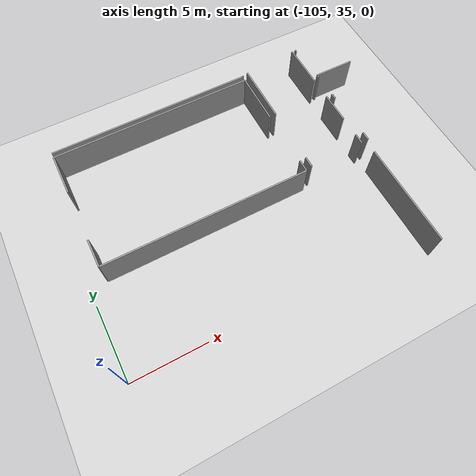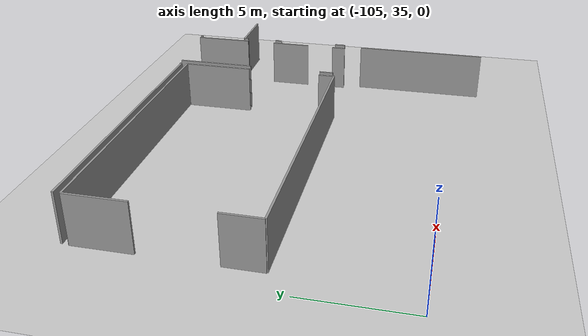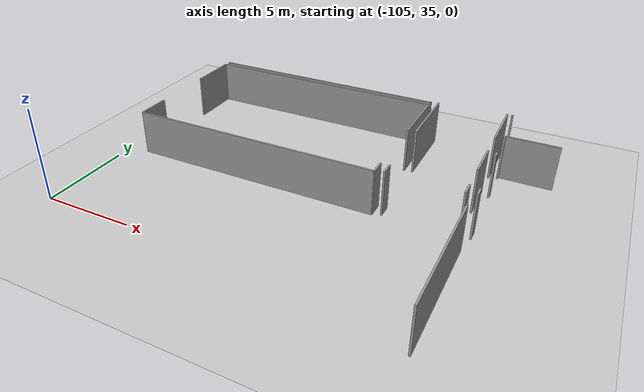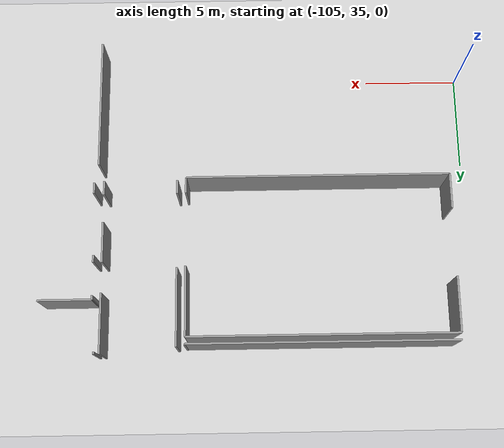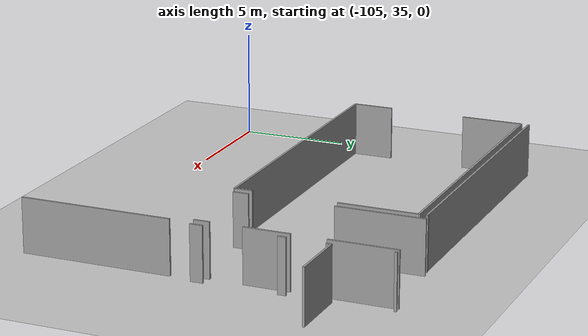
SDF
<sdf version="1.6">
 <world name="default">
  <model name="ground_plane">
   <static>1</static>
   <link name="link">
    <collision name="collision">
     <geometry><plane><normal>0 0 1</normal><size>100 100</size></plane></geometry>
     <surface><friction><ode><mu>100</mu><mu2>50</mu2></ode></friction></surface>
    </collision>
    <visual name="visual">
     <cast_shadows>0</cast_shadows>
     <geometry><plane><normal>0 0 1</normal><size>100 100</size></plane></geometry>
     <material>
      <script><uri>file://media/materials/scripts/gazebo.material</uri><name>Gazebo/Grey</name></script>
     </material>
    </visual>
   </link>
  </model>
  <model name="0510035520_A_40_1_103">
   <static>1</static>
   <link name="Wall_8">
    <collision name="Wall_8_Collision">
     <geometry><box><size>0.0763954543436 0.1 2.5</size></box></geometry>
     <pose>0.0381977271718 0 1.25 0 0 0</pose>
    </collision>
    <visual name="Wall_8_Visual">
     <pose>0.0381977271718 0 1.25 0 0 0</pose>
     <geometry><box><size>0.0763954543436 0.1 2.5</size></box></geometry>
     <material>
      <script><uri>file://media/materials/scripts/gazebo.material</uri><name>Gazebo/Grey</name></script>
      <ambient>1 1 1 1</ambient>
     </material>
    </visual>
    <pose>22.2704170659 -18.6798307117 0 0 0 -1.57079632679</pose>
   </link>
   <link name="Wall_9">
    <collision name="Wall_9_Collision">
     <geometry><box><size>13.904734107 0.1 2.5</size></box></geometry>
     <pose>6.95236705351 0 1.25 0 0 0</pose>
    </collision>
    <visual name="Wall_9_Visual">
     <pose>6.95236705351 0 1.25 0 0 0</pose>
     <geometry><box><size>13.904734107 0.1 2.5</size></box></geometry>
     <material>
      <script><uri>file://media/materials/scripts/gazebo.material</uri><name>Gazebo/Grey</name></script>
      <ambient>1 1 1 1</ambient>
     </material>
    </visual>
    <pose>22.2704170659 -18.7562261661 0 0 0 3.14159265359</pose>
   </link>
   <link name="Wall_11">
    <collision name="Wall_11_Collision">
     <geometry><box><size>1.87283075615 0.1 2.5</size></box></geometry>
     <pose>0.936415378075 0 1.25 0 0 0</pose>
    </collision>
    <visual name="Wall_11_Visual">
     <pose>0.936415378075 0 1.25 0 0 0</pose>
     <geometry><box><size>1.87283075615 0.1 2.5</size></box></geometry>
     <material>
      <script><uri>file://media/materials/scripts/gazebo.material</uri><name>Gazebo/Grey</name></script>
      <ambient>1 1 1 1</ambient>
     </material>
    </visual>
    <pose>8.36898243031 -27.4554095469 0 0 0 1.57079632679</pose>
   </link>
   <link name="Wall_12">
    <collision name="Wall_12_Collision">
     <geometry><box><size>2.87079396704 0.1 2.5</size></box></geometry>
     <pose>1.43539698352 0 1.25 0 0 0</pose>
    </collision>
    <visual name="Wall_12_Visual">
     <pose>1.43539698352 0 1.25 0 0 0</pose>
     <geometry><box><size>2.87079396704 0.1 2.5</size></box></geometry>
     <material>
      <script><uri>file://media/materials/scripts/gazebo.material</uri><name>Gazebo/Grey</name></script>
      <ambient>1 1 1 1</ambient>
     </material>
    </visual>
    <pose>8.36898243031 -21.9815864113 0 0 0 1.57079632679</pose>
   </link>
   <link name="Wall_13">
    <collision name="Wall_13_Collision">
     <geometry><box><size>13.8846834728 0.1 2.5</size></box></geometry>
     <pose>6.94234173641 0 1.25 0 0 0</pose>
    </collision>
    <visual name="Wall_13_Visual">
     <pose>6.94234173641 0 1.25 0 0 0</pose>
     <geometry><box><size>13.8846834728 0.1 2.5</size></box></geometry>
     <material>
      <script><uri>file://media/materials/scripts/gazebo.material</uri><name>Gazebo/Grey</name></script>
      <ambient>1 1 1 1</ambient>
     </material>
    </visual>
    <pose>8.36898243031 -19.1107924442 0 0 0 0.0</pose>
   </link>
   <link name="Wall_14">
    <collision name="Wall_14_Collision">
     <geometry><box><size>3.60936796086 0.1 2.5</size></box></geometry>
     <pose>1.80468398043 0 1.25 0 0 0</pose>
    </collision>
    <visual name="Wall_14_Visual">
     <pose>1.80468398043 0 1.25 0 0 0</pose>
     <geometry><box><size>3.60936796086 0.1 2.5</size></box></geometry>
     <material>
      <script><uri>file://media/materials/scripts/gazebo.material</uri><name>Gazebo/Grey</name></script>
      <ambient>1 1 1 1</ambient>
     </material>
    </visual>
    <pose>22.2536659031 -19.1107924442 0 0 0 -1.57079632679</pose>
   </link>
   <link name="Wall_15">
    <collision name="Wall_15_Collision">
     <geometry><box><size>0.831466805414 0.1 2.5</size></box></geometry>
     <pose>0.415733402707 0 1.25 0 0 0</pose>
    </collision>
    <visual name="Wall_15_Visual">
     <pose>0.415733402707 0 1.25 0 0 0</pose>
     <geometry><box><size>0.831466805414 0.1 2.5</size></box></geometry>
     <material>
      <script><uri>file://media/materials/scripts/gazebo.material</uri><name>Gazebo/Grey</name></script>
      <ambient>1 1 1 1</ambient>
     </material>
    </visual>
    <pose>22.2536659031 -26.6186128261 0 0 0 -1.57079632679</pose>
   </link>
   <link name="Wall_16">
    <collision name="Wall_16_Collision">
     <geometry><box><size>13.8846844958 0.1 2.5</size></box></geometry>
     <pose>6.94234224791 0 1.25 0 0 0</pose>
    </collision>
    <visual name="Wall_16_Visual">
     <pose>6.94234224791 0 1.25 0 0 0</pose>
     <geometry><box><size>13.8846844958 0.1 2.5</size></box></geometry>
     <material>
      <script><uri>file://media/materials/scripts/gazebo.material</uri><name>Gazebo/Grey</name></script>
      <ambient>1 1 1 1</ambient>
     </material>
    </visual>
    <pose>22.2536659031 -27.4500796315 0 0 0 -3.14120878347</pose>
   </link>
   <link name="Wall_95">
    <collision name="Wall_95_Collision">
     <geometry><box><size>0.123857082125 0.1 2.5</size></box></geometry>
     <pose>0.0619285410626 0 1.25 0 0 0</pose>
    </collision>
    <visual name="Wall_95_Visual">
     <pose>0.0619285410626 0 1.25 0 0 0</pose>
     <geometry><box><size>0.123857082125 0.1 2.5</size></box></geometry>
     <material>
      <script><uri>file://media/materials/scripts/gazebo.material</uri><name>Gazebo/Grey</name></script>
      <ambient>1 1 1 1</ambient>
     </material>
    </visual>
    <pose>26.8244490834 -18.431862742 0 0 0 1.57079632679</pose>
   </link>
   <link name="Wall_97">
    <collision name="Wall_97_Collision">
     <geometry><box><size>2.79186045774 0.1 2.5</size></box></geometry>
     <pose>1.39593022887 0 1.25 0 0 0</pose>
    </collision>
    <visual name="Wall_97_Visual">
     <pose>1.39593022887 0 1.25 0 0 0</pose>
     <geometry><box><size>2.79186045774 0.1 2.5</size></box></geometry>
     <material>
      <script><uri>file://media/materials/scripts/gazebo.material</uri><name>Gazebo/Grey</name></script>
      <ambient>1 1 1 1</ambient>
     </material>
    </visual>
    <pose>26.983838935 -21.0544349338 0 0 0 0.0</pose>
   </link>
   <link name="Wall_100">
    <collision name="Wall_100_Collision">
     <geometry><box><size>0.373347884848 0.1 2.5</size></box></geometry>
     <pose>0.186673942424 0 1.25 0 0 0</pose>
    </collision>
    <visual name="Wall_100_Visual">
     <pose>0.186673942424 0 1.25 0 0 0</pose>
     <geometry><box><size>0.373347884848 0.1 2.5</size></box></geometry>
     <material>
      <script><uri>file://media/materials/scripts/gazebo.material</uri><name>Gazebo/Grey</name></script>
      <ambient>1 1 1 1</ambient>
     </material>
    </visual>
    <pose>26.9904378779 -23.3630497268 0 0 0 1.57079632679</pose>
   </link>
   <link name="Wall_101">
    <collision name="Wall_101_Collision">
     <geometry><box><size>0.222431522595 0.1 2.5</size></box></geometry>
     <pose>0.111215761297 0 1.25 0 0 0</pose>
    </collision>
    <visual name="Wall_101_Visual">
     <pose>0.111215761297 0 1.25 0 0 0</pose>
     <geometry><box><size>0.222431522595 0.1 2.5</size></box></geometry>
     <material>
      <script><uri>file://media/materials/scripts/gazebo.material</uri><name>Gazebo/Grey</name></script>
      <ambient>1 1 1 1</ambient>
     </material>
    </visual>
    <pose>26.9904378779 -21.2767685484 0 0 0 1.60046798131</pose>
   </link>
   <link name="Wall_105">
    <collision name="Wall_105_Collision">
     <geometry><box><size>0.577153698263 0.1 2.5</size></box></geometry>
     <pose>0.288576849132 0 1.25 0 0 0</pose>
    </collision>
    <visual name="Wall_105_Visual">
     <pose>0.288576849132 0 1.25 0 0 0</pose>
     <geometry><box><size>0.577153698263 0.1 2.5</size></box></geometry>
     <material>
      <script><uri>file://media/materials/scripts/gazebo.material</uri><name>Gazebo/Grey</name></script>
      <ambient>1 1 1 1</ambient>
     </material>
    </visual>
    <pose>27.0622648333 -27.2318069048 0 0 0 1.57079632679</pose>
   </link>
   <link name="Wall_117">
    <collision name="Wall_117_Collision">
     <geometry><box><size>3.08627483328 0.1 2.5</size></box></geometry>
     <pose>1.54313741664 0 1.25 0 0 0</pose>
    </collision>
    <visual name="Wall_117_Visual">
     <pose>1.54313741664 0 1.25 0 0 0</pose>
     <geometry><box><size>3.08627483328 0.1 2.5</size></box></geometry>
     <material>
      <script><uri>file://media/materials/scripts/gazebo.material</uri><name>Gazebo/Grey</name></script>
      <ambient>1 1 1 1</ambient>
     </material>
    </visual>
    <pose>26.5422173717 -18.3191731017 0 0 0 -1.57079632679</pose>
   </link>
   <link name="Wall_118">
    <collision name="Wall_118_Collision">
     <geometry><box><size>2.11775305994 0.1 2.5</size></box></geometry>
     <pose>1.05887652997 0 1.25 0 0 0</pose>
    </collision>
    <visual name="Wall_118_Visual">
     <pose>1.05887652997 0 1.25 0 0 0</pose>
     <geometry><box><size>2.11775305994 0.1 2.5</size></box></geometry>
     <material>
      <script><uri>file://media/materials/scripts/gazebo.material</uri><name>Gazebo/Grey</name></script>
      <ambient>1 1 1 1</ambient>
     </material>
    </visual>
    <pose>26.5422173717 -22.9851333431 0 0 0 -1.57079632679</pose>
   </link>
   <link name="Wall_119">
    <collision name="Wall_119_Collision">
     <geometry><box><size>0.733751689393 0.1 2.5</size></box></geometry>
     <pose>0.366875844696 0 1.25 0 0 0</pose>
    </collision>
    <visual name="Wall_119_Visual">
     <pose>0.366875844696 0 1.25 0 0 0</pose>
     <geometry><box><size>0.733751689393 0.1 2.5</size></box></geometry>
     <material>
      <script><uri>file://media/materials/scripts/gazebo.material</uri><name>Gazebo/Grey</name></script>
      <ambient>1 1 1 1</ambient>
     </material>
    </visual>
    <pose>26.5422173717 -26.5780039467 0 0 0 -1.57079632679</pose>
   </link>
   <link name="Wall_120">
    <collision name="Wall_120_Collision">
     <geometry><box><size>0.72537610802 0.1 2.5</size></box></geometry>
     <pose>0.36268805401 0 1.25 0 0 0</pose>
    </collision>
    <visual name="Wall_120_Visual">
     <pose>0.36268805401 0 1.25 0 0 0</pose>
     <geometry><box><size>0.72537610802 0.1 2.5</size></box></geometry>
     <material>
      <script><uri>file://media/materials/scripts/gazebo.material</uri><name>Gazebo/Grey</name></script>
      <ambient>1 1 1 1</ambient>
     </material>
    </visual>
    <pose>22.7046782698 -27.3117556361 0 0 0 1.57079632679</pose>
   </link>
   <link name="Wall_121">
    <collision name="Wall_121_Collision">
     <geometry><box><size>4.0563194396 0.1 2.5</size></box></geometry>
     <pose>2.0281597198 0 1.25 0 0 0</pose>
    </collision>
    <visual name="Wall_121_Visual">
     <pose>2.0281597198 0 1.25 0 0 0</pose>
     <geometry><box><size>4.0563194396 0.1 2.5</size></box></geometry>
     <material>
      <script><uri>file://media/materials/scripts/gazebo.material</uri><name>Gazebo/Grey</name></script>
      <ambient>1 1 1 1</ambient>
     </material>
    </visual>
    <pose>22.7046782698 -22.6666074454 0 0 0 1.57079632679</pose>
   </link>
   <link name="Wall_243">
    <collision name="Wall_243_Collision">
     <geometry><box><size>6.93244332206 0.1 2.5</size></box></geometry>
     <pose>3.46622166103 0 1.25 0 0 0</pose>
    </collision>
    <visual name="Wall_243_Visual">
     <pose>3.46622166103 0 1.25 0 0 0</pose>
     <geometry><box><size>6.93244332206 0.1 2.5</size></box></geometry>
     <material>
      <script><uri>file://media/materials/scripts/gazebo.material</uri><name>Gazebo/Grey</name></script>
      <ambient>1 1 1 1</ambient>
     </material>
    </visual>
    <pose>26.8604894639 -28.2376380861 0 0 0 -1.57079632679</pose>
   </link>
   <pose>-112.2 68.6448144365 0 0 0 0</pose>
  </model>
 </world>
</sdf>
